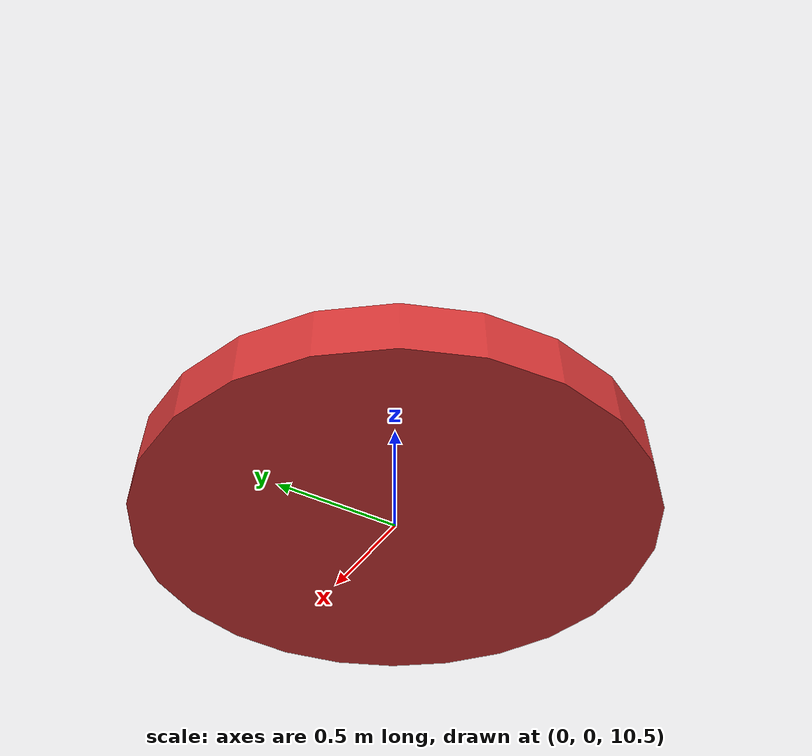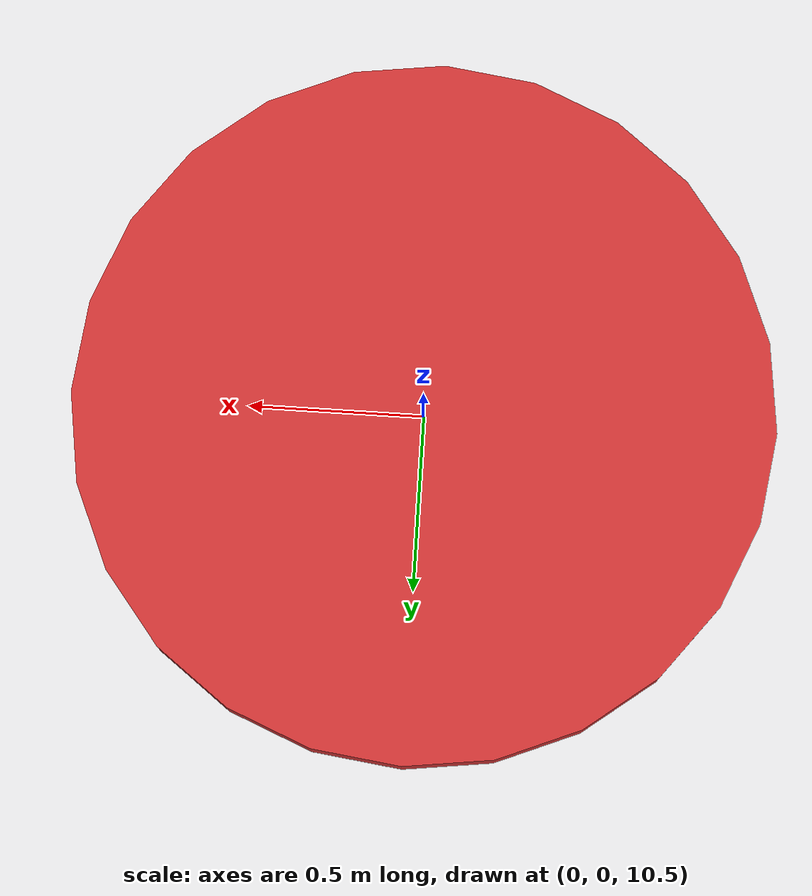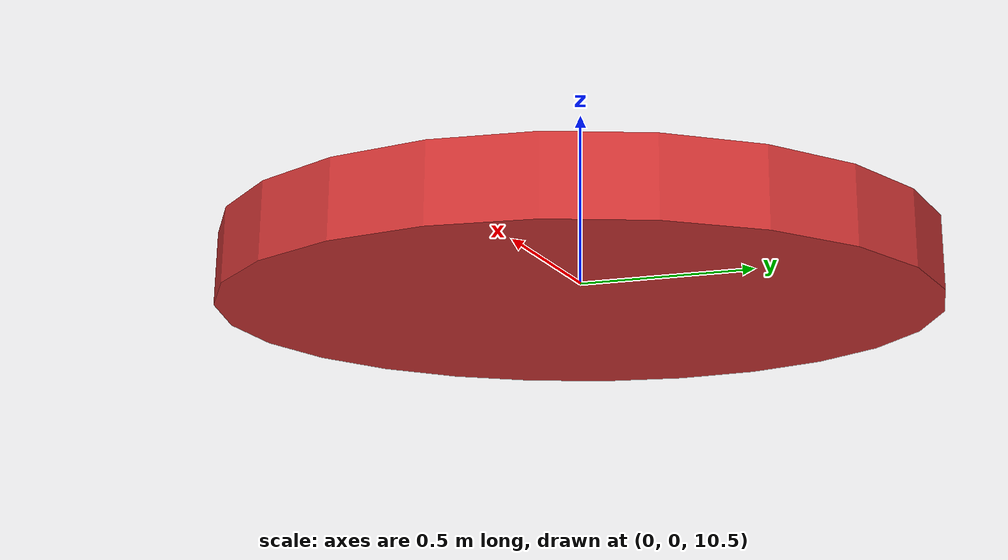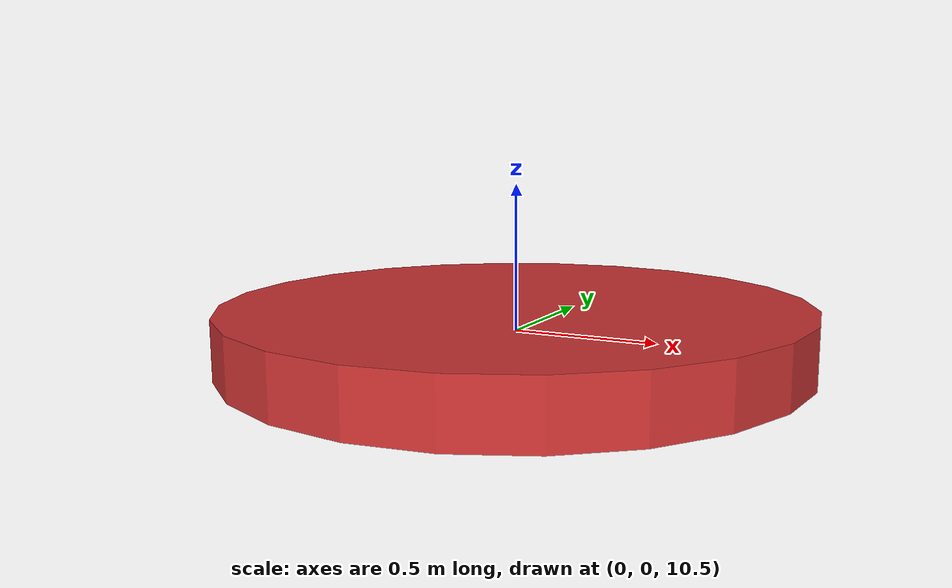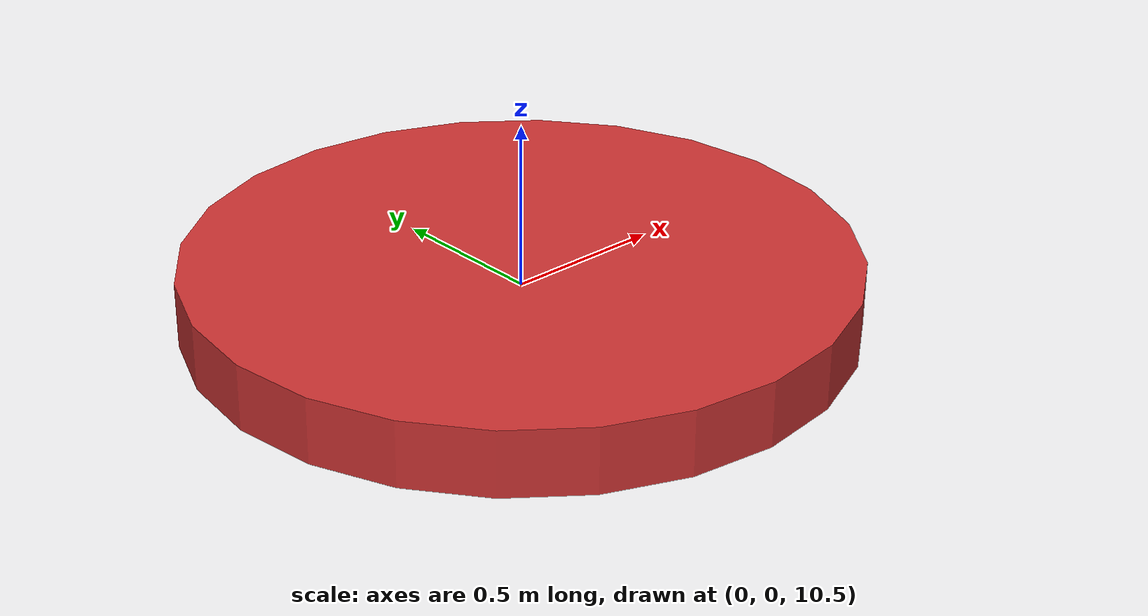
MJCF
<mujoco model="cylinder_simulation">
    <compiler angle="radian" />
    <default>
        <geom solref="0.02 1" solimp="0.9 0.95 0.001" />
    </default>
    <option timestep="0.01" integrator="RK4" />

    <worldbody>
        <!-- Ground plane -->
        <geom type="plane" size="10 10 0.1" rgba="0.9 0.9 0.9 1" />

        <!-- Cylinder -->
        <body name="cylinder" pos="0 0 10.5">
            <geom type="cylinder" size="1 0.1" mass="1.0" rgba="0.8 0.2 0.2 1" />
            <joint name="free_joint" type="free" />
        </body>
    </worldbody>

    <asset>
        <!-- Optional assets can be added here -->
    </asset>

    <actuator>
        <!-- Optional actuators can be added here -->
    </actuator>
</mujoco>
